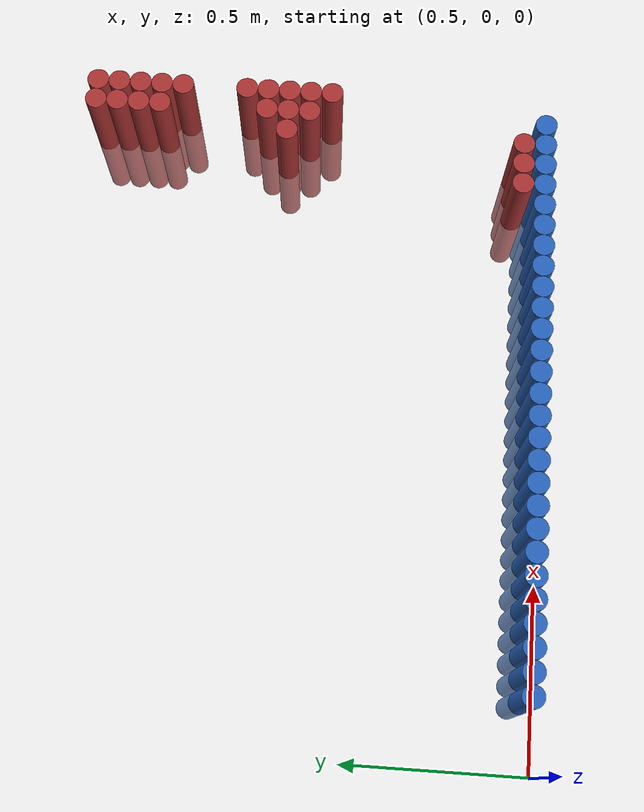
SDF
<sdf version="1.6">
 <world name="default">
  <model name="ground_plane">
   <static>1</static>
   <link name="link">
    <collision name="collision">
     <geometry><plane><normal>0 0 1</normal><size>100 100</size></plane></geometry>
     <surface><friction><ode><mu>100</mu><mu2>50</mu2></ode></friction></surface>
    </collision>
    <visual name="visual">
     <cast_shadows>0</cast_shadows>
     <geometry><plane><normal>0 0 1</normal><size>100 100</size></plane></geometry>
     <material>
      <script><uri>file://media/materials/scripts/gazebo.material</uri><name>Gazebo/Grey</name></script>
     </material>
    </visual>
   </link>
  </model>
  <model name="unit_cylinder_49">
   <static>1</static>
   <pose>0.690000 0.030000 0.000000 0.000000 0.000000 0.000000</pose>
   <link name="link">
    <inertial>
     <mass>1</mass>
     <inertia><ixx>0.145833</ixx><ixy>0</ixy><ixz>0</ixz><iyy>0.145833</iyy><iyz>0</iyz><izz>0.125</izz></inertia>
    </inertial>
    <collision name="collision">
     <geometry><cylinder><radius>0.030000</radius><length>0.5</length></cylinder></geometry>
    </collision>
    <visual name="visual">
     <geometry><cylinder><radius>0.030000</radius><length>0.5</length></cylinder></geometry>
     <material>
      <ambient>0.152000 0.379000 0.720000 1</ambient>
      <diffuse>0.152000 0.379000 0.720000 1</diffuse>
     </material>
     <material>
      <script><name>Gazebo/Grey</name><uri>file://media/materials/scripts/gazebo.material</uri></script>
     </material>
    </visual>
   </link>
  </model>
  <model name="unit_cylinder_51">
   <static>1</static>
   <pose>0.750000 0.030000 0.000000 0.000000 0.000000 0.000000</pose>
   <link name="link">
    <inertial>
     <mass>1</mass>
     <inertia><ixx>0.145833</ixx><ixy>0</ixy><ixz>0</ixz><iyy>0.145833</iyy><iyz>0</iyz><izz>0.125</izz></inertia>
    </inertial>
    <collision name="collision">
     <geometry><cylinder><radius>0.030000</radius><length>0.5</length></cylinder></geometry>
    </collision>
    <visual name="visual">
     <geometry><cylinder><radius>0.030000</radius><length>0.5</length></cylinder></geometry>
     <material>
      <ambient>0.152000 0.379000 0.720000 1</ambient>
      <diffuse>0.152000 0.379000 0.720000 1</diffuse>
     </material>
     <material>
      <script><name>Gazebo/Grey</name><uri>file://media/materials/scripts/gazebo.material</uri></script>
     </material>
    </visual>
   </link>
  </model>
  <model name="unit_cylinder_53">
   <static>1</static>
   <pose>0.810000 0.030000 0.000000 0.000000 0.000000 0.000000</pose>
   <link name="link">
    <inertial>
     <mass>1</mass>
     <inertia><ixx>0.145833</ixx><ixy>0</ixy><ixz>0</ixz><iyy>0.145833</iyy><iyz>0</iyz><izz>0.125</izz></inertia>
    </inertial>
    <collision name="collision">
     <geometry><cylinder><radius>0.030000</radius><length>0.5</length></cylinder></geometry>
    </collision>
    <visual name="visual">
     <geometry><cylinder><radius>0.030000</radius><length>0.5</length></cylinder></geometry>
     <material>
      <ambient>0.152000 0.379000 0.720000 1</ambient>
      <diffuse>0.152000 0.379000 0.720000 1</diffuse>
     </material>
     <material>
      <script><name>Gazebo/Grey</name><uri>file://media/materials/scripts/gazebo.material</uri></script>
     </material>
    </visual>
   </link>
  </model>
  <model name="unit_cylinder_55">
   <static>1</static>
   <pose>0.870000 0.030000 0.000000 0.000000 0.000000 0.000000</pose>
   <link name="link">
    <inertial>
     <mass>1</mass>
     <inertia><ixx>0.145833</ixx><ixy>0</ixy><ixz>0</ixz><iyy>0.145833</iyy><iyz>0</iyz><izz>0.125</izz></inertia>
    </inertial>
    <collision name="collision">
     <geometry><cylinder><radius>0.030000</radius><length>0.5</length></cylinder></geometry>
    </collision>
    <visual name="visual">
     <geometry><cylinder><radius>0.030000</radius><length>0.5</length></cylinder></geometry>
     <material>
      <ambient>0.152000 0.379000 0.720000 1</ambient>
      <diffuse>0.152000 0.379000 0.720000 1</diffuse>
     </material>
     <material>
      <script><name>Gazebo/Grey</name><uri>file://media/materials/scripts/gazebo.material</uri></script>
     </material>
    </visual>
   </link>
  </model>
  <model name="unit_cylinder_57">
   <static>1</static>
   <pose>0.930000 0.030000 0.000000 0.000000 0.000000 0.000000</pose>
   <link name="link">
    <inertial>
     <mass>1</mass>
     <inertia><ixx>0.145833</ixx><ixy>0</ixy><ixz>0</ixz><iyy>0.145833</iyy><iyz>0</iyz><izz>0.125</izz></inertia>
    </inertial>
    <collision name="collision">
     <geometry><cylinder><radius>0.030000</radius><length>0.5</length></cylinder></geometry>
    </collision>
    <visual name="visual">
     <geometry><cylinder><radius>0.030000</radius><length>0.5</length></cylinder></geometry>
     <material>
      <ambient>0.152000 0.379000 0.720000 1</ambient>
      <diffuse>0.152000 0.379000 0.720000 1</diffuse>
     </material>
     <material>
      <script><name>Gazebo/Grey</name><uri>file://media/materials/scripts/gazebo.material</uri></script>
     </material>
    </visual>
   </link>
  </model>
  <model name="unit_cylinder_59">
   <static>1</static>
   <pose>0.990000 0.030000 0.000000 0.000000 0.000000 0.000000</pose>
   <link name="link">
    <inertial>
     <mass>1</mass>
     <inertia><ixx>0.145833</ixx><ixy>0</ixy><ixz>0</ixz><iyy>0.145833</iyy><iyz>0</iyz><izz>0.125</izz></inertia>
    </inertial>
    <collision name="collision">
     <geometry><cylinder><radius>0.030000</radius><length>0.5</length></cylinder></geometry>
    </collision>
    <visual name="visual">
     <geometry><cylinder><radius>0.030000</radius><length>0.5</length></cylinder></geometry>
     <material>
      <ambient>0.152000 0.379000 0.720000 1</ambient>
      <diffuse>0.152000 0.379000 0.720000 1</diffuse>
     </material>
     <material>
      <script><name>Gazebo/Grey</name><uri>file://media/materials/scripts/gazebo.material</uri></script>
     </material>
    </visual>
   </link>
  </model>
  <model name="unit_cylinder_61">
   <static>1</static>
   <pose>1.050000 0.030000 0.000000 0.000000 0.000000 0.000000</pose>
   <link name="link">
    <inertial>
     <mass>1</mass>
     <inertia><ixx>0.145833</ixx><ixy>0</ixy><ixz>0</ixz><iyy>0.145833</iyy><iyz>0</iyz><izz>0.125</izz></inertia>
    </inertial>
    <collision name="collision">
     <geometry><cylinder><radius>0.030000</radius><length>0.5</length></cylinder></geometry>
    </collision>
    <visual name="visual">
     <geometry><cylinder><radius>0.030000</radius><length>0.5</length></cylinder></geometry>
     <material>
      <ambient>0.152000 0.379000 0.720000 1</ambient>
      <diffuse>0.152000 0.379000 0.720000 1</diffuse>
     </material>
     <material>
      <script><name>Gazebo/Grey</name><uri>file://media/materials/scripts/gazebo.material</uri></script>
     </material>
    </visual>
   </link>
  </model>
  <model name="unit_cylinder_63">
   <static>1</static>
   <pose>1.110000 0.030000 0.000000 0.000000 0.000000 0.000000</pose>
   <link name="link">
    <inertial>
     <mass>1</mass>
     <inertia><ixx>0.145833</ixx><ixy>0</ixy><ixz>0</ixz><iyy>0.145833</iyy><iyz>0</iyz><izz>0.125</izz></inertia>
    </inertial>
    <collision name="collision">
     <geometry><cylinder><radius>0.030000</radius><length>0.5</length></cylinder></geometry>
    </collision>
    <visual name="visual">
     <geometry><cylinder><radius>0.030000</radius><length>0.5</length></cylinder></geometry>
     <material>
      <ambient>0.152000 0.379000 0.720000 1</ambient>
      <diffuse>0.152000 0.379000 0.720000 1</diffuse>
     </material>
     <material>
      <script><name>Gazebo/Grey</name><uri>file://media/materials/scripts/gazebo.material</uri></script>
     </material>
    </visual>
   </link>
  </model>
  <model name="unit_cylinder_65">
   <static>1</static>
   <pose>1.170000 0.030000 0.000000 0.000000 0.000000 0.000000</pose>
   <link name="link">
    <inertial>
     <mass>1</mass>
     <inertia><ixx>0.145833</ixx><ixy>0</ixy><ixz>0</ixz><iyy>0.145833</iyy><iyz>0</iyz><izz>0.125</izz></inertia>
    </inertial>
    <collision name="collision">
     <geometry><cylinder><radius>0.030000</radius><length>0.5</length></cylinder></geometry>
    </collision>
    <visual name="visual">
     <geometry><cylinder><radius>0.030000</radius><length>0.5</length></cylinder></geometry>
     <material>
      <ambient>0.152000 0.379000 0.720000 1</ambient>
      <diffuse>0.152000 0.379000 0.720000 1</diffuse>
     </material>
     <material>
      <script><name>Gazebo/Grey</name><uri>file://media/materials/scripts/gazebo.material</uri></script>
     </material>
    </visual>
   </link>
  </model>
  <model name="unit_cylinder_67">
   <static>1</static>
   <pose>1.230000 0.030000 0.000000 0.000000 0.000000 0.000000</pose>
   <link name="link">
    <inertial>
     <mass>1</mass>
     <inertia><ixx>0.145833</ixx><ixy>0</ixy><ixz>0</ixz><iyy>0.145833</iyy><iyz>0</iyz><izz>0.125</izz></inertia>
    </inertial>
    <collision name="collision">
     <geometry><cylinder><radius>0.030000</radius><length>0.5</length></cylinder></geometry>
    </collision>
    <visual name="visual">
     <geometry><cylinder><radius>0.030000</radius><length>0.5</length></cylinder></geometry>
     <material>
      <ambient>0.152000 0.379000 0.720000 1</ambient>
      <diffuse>0.152000 0.379000 0.720000 1</diffuse>
     </material>
     <material>
      <script><name>Gazebo/Grey</name><uri>file://media/materials/scripts/gazebo.material</uri></script>
     </material>
    </visual>
   </link>
  </model>
  <model name="unit_cylinder_69">
   <static>1</static>
   <pose>1.290000 0.030000 0.000000 0.000000 0.000000 0.000000</pose>
   <link name="link">
    <inertial>
     <mass>1</mass>
     <inertia><ixx>0.145833</ixx><ixy>0</ixy><ixz>0</ixz><iyy>0.145833</iyy><iyz>0</iyz><izz>0.125</izz></inertia>
    </inertial>
    <collision name="collision">
     <geometry><cylinder><radius>0.030000</radius><length>0.5</length></cylinder></geometry>
    </collision>
    <visual name="visual">
     <geometry><cylinder><radius>0.030000</radius><length>0.5</length></cylinder></geometry>
     <material>
      <ambient>0.152000 0.379000 0.720000 1</ambient>
      <diffuse>0.152000 0.379000 0.720000 1</diffuse>
     </material>
     <material>
      <script><name>Gazebo/Grey</name><uri>file://media/materials/scripts/gazebo.material</uri></script>
     </material>
    </visual>
   </link>
  </model>
  <model name="unit_cylinder_71">
   <static>1</static>
   <pose>1.350000 0.030000 0.000000 0.000000 0.000000 0.000000</pose>
   <link name="link">
    <inertial>
     <mass>1</mass>
     <inertia><ixx>0.145833</ixx><ixy>0</ixy><ixz>0</ixz><iyy>0.145833</iyy><iyz>0</iyz><izz>0.125</izz></inertia>
    </inertial>
    <collision name="collision">
     <geometry><cylinder><radius>0.030000</radius><length>0.5</length></cylinder></geometry>
    </collision>
    <visual name="visual">
     <geometry><cylinder><radius>0.030000</radius><length>0.5</length></cylinder></geometry>
     <material>
      <ambient>0.152000 0.379000 0.720000 1</ambient>
      <diffuse>0.152000 0.379000 0.720000 1</diffuse>
     </material>
     <material>
      <script><name>Gazebo/Grey</name><uri>file://media/materials/scripts/gazebo.material</uri></script>
     </material>
    </visual>
   </link>
  </model>
  <model name="unit_cylinder_73">
   <static>1</static>
   <pose>1.410000 0.030000 0.000000 0.000000 0.000000 0.000000</pose>
   <link name="link">
    <inertial>
     <mass>1</mass>
     <inertia><ixx>0.145833</ixx><ixy>0</ixy><ixz>0</ixz><iyy>0.145833</iyy><iyz>0</iyz><izz>0.125</izz></inertia>
    </inertial>
    <collision name="collision">
     <geometry><cylinder><radius>0.030000</radius><length>0.5</length></cylinder></geometry>
    </collision>
    <visual name="visual">
     <geometry><cylinder><radius>0.030000</radius><length>0.5</length></cylinder></geometry>
     <material>
      <ambient>0.152000 0.379000 0.720000 1</ambient>
      <diffuse>0.152000 0.379000 0.720000 1</diffuse>
     </material>
     <material>
      <script><name>Gazebo/Grey</name><uri>file://media/materials/scripts/gazebo.material</uri></script>
     </material>
    </visual>
   </link>
  </model>
  <model name="unit_cylinder_75">
   <static>1</static>
   <pose>1.470000 0.030000 0.000000 0.000000 0.000000 0.000000</pose>
   <link name="link">
    <inertial>
     <mass>1</mass>
     <inertia><ixx>0.145833</ixx><ixy>0</ixy><ixz>0</ixz><iyy>0.145833</iyy><iyz>0</iyz><izz>0.125</izz></inertia>
    </inertial>
    <collision name="collision">
     <geometry><cylinder><radius>0.030000</radius><length>0.5</length></cylinder></geometry>
    </collision>
    <visual name="visual">
     <geometry><cylinder><radius>0.030000</radius><length>0.5</length></cylinder></geometry>
     <material>
      <ambient>0.152000 0.379000 0.720000 1</ambient>
      <diffuse>0.152000 0.379000 0.720000 1</diffuse>
     </material>
     <material>
      <script><name>Gazebo/Grey</name><uri>file://media/materials/scripts/gazebo.material</uri></script>
     </material>
    </visual>
   </link>
  </model>
  <model name="unit_cylinder_77">
   <static>1</static>
   <pose>1.530000 0.030000 0.000000 0.000000 0.000000 0.000000</pose>
   <link name="link">
    <inertial>
     <mass>1</mass>
     <inertia><ixx>0.145833</ixx><ixy>0</ixy><ixz>0</ixz><iyy>0.145833</iyy><iyz>0</iyz><izz>0.125</izz></inertia>
    </inertial>
    <collision name="collision">
     <geometry><cylinder><radius>0.030000</radius><length>0.5</length></cylinder></geometry>
    </collision>
    <visual name="visual">
     <geometry><cylinder><radius>0.030000</radius><length>0.5</length></cylinder></geometry>
     <material>
      <ambient>0.152000 0.379000 0.720000 1</ambient>
      <diffuse>0.152000 0.379000 0.720000 1</diffuse>
     </material>
     <material>
      <script><name>Gazebo/Grey</name><uri>file://media/materials/scripts/gazebo.material</uri></script>
     </material>
    </visual>
   </link>
  </model>
  <model name="unit_cylinder_79">
   <static>1</static>
   <pose>1.590000 0.030000 0.000000 0.000000 0.000000 0.000000</pose>
   <link name="link">
    <inertial>
     <mass>1</mass>
     <inertia><ixx>0.145833</ixx><ixy>0</ixy><ixz>0</ixz><iyy>0.145833</iyy><iyz>0</iyz><izz>0.125</izz></inertia>
    </inertial>
    <collision name="collision">
     <geometry><cylinder><radius>0.030000</radius><length>0.5</length></cylinder></geometry>
    </collision>
    <visual name="visual">
     <geometry><cylinder><radius>0.030000</radius><length>0.5</length></cylinder></geometry>
     <material>
      <ambient>0.152000 0.379000 0.720000 1</ambient>
      <diffuse>0.152000 0.379000 0.720000 1</diffuse>
     </material>
     <material>
      <script><name>Gazebo/Grey</name><uri>file://media/materials/scripts/gazebo.material</uri></script>
     </material>
    </visual>
   </link>
  </model>
  <model name="unit_cylinder_81">
   <static>1</static>
   <pose>1.650000 0.030000 0.000000 0.000000 0.000000 0.000000</pose>
   <link name="link">
    <inertial>
     <mass>1</mass>
     <inertia><ixx>0.145833</ixx><ixy>0</ixy><ixz>0</ixz><iyy>0.145833</iyy><iyz>0</iyz><izz>0.125</izz></inertia>
    </inertial>
    <collision name="collision">
     <geometry><cylinder><radius>0.030000</radius><length>0.5</length></cylinder></geometry>
    </collision>
    <visual name="visual">
     <geometry><cylinder><radius>0.030000</radius><length>0.5</length></cylinder></geometry>
     <material>
      <ambient>0.152000 0.379000 0.720000 1</ambient>
      <diffuse>0.152000 0.379000 0.720000 1</diffuse>
     </material>
     <material>
      <script><name>Gazebo/Grey</name><uri>file://media/materials/scripts/gazebo.material</uri></script>
     </material>
    </visual>
   </link>
  </model>
  <model name="unit_cylinder_83">
   <static>1</static>
   <pose>1.710000 0.030000 0.000000 0.000000 0.000000 0.000000</pose>
   <link name="link">
    <inertial>
     <mass>1</mass>
     <inertia><ixx>0.145833</ixx><ixy>0</ixy><ixz>0</ixz><iyy>0.145833</iyy><iyz>0</iyz><izz>0.125</izz></inertia>
    </inertial>
    <collision name="collision">
     <geometry><cylinder><radius>0.030000</radius><length>0.5</length></cylinder></geometry>
    </collision>
    <visual name="visual">
     <geometry><cylinder><radius>0.030000</radius><length>0.5</length></cylinder></geometry>
     <material>
      <ambient>0.152000 0.379000 0.720000 1</ambient>
      <diffuse>0.152000 0.379000 0.720000 1</diffuse>
     </material>
     <material>
      <script><name>Gazebo/Grey</name><uri>file://media/materials/scripts/gazebo.material</uri></script>
     </material>
    </visual>
   </link>
  </model>
  <model name="unit_cylinder_85">
   <static>1</static>
   <pose>1.770000 0.030000 0.000000 0.000000 0.000000 0.000000</pose>
   <link name="link">
    <inertial>
     <mass>1</mass>
     <inertia><ixx>0.145833</ixx><ixy>0</ixy><ixz>0</ixz><iyy>0.145833</iyy><iyz>0</iyz><izz>0.125</izz></inertia>
    </inertial>
    <collision name="collision">
     <geometry><cylinder><radius>0.030000</radius><length>0.5</length></cylinder></geometry>
    </collision>
    <visual name="visual">
     <geometry><cylinder><radius>0.030000</radius><length>0.5</length></cylinder></geometry>
     <material>
      <ambient>0.152000 0.379000 0.720000 1</ambient>
      <diffuse>0.152000 0.379000 0.720000 1</diffuse>
     </material>
     <material>
      <script><name>Gazebo/Grey</name><uri>file://media/materials/scripts/gazebo.material</uri></script>
     </material>
    </visual>
   </link>
  </model>
  <model name="unit_cylinder_87">
   <static>1</static>
   <pose>1.830000 0.030000 0.000000 0.000000 0.000000 0.000000</pose>
   <link name="link">
    <inertial>
     <mass>1</mass>
     <inertia><ixx>0.145833</ixx><ixy>0</ixy><ixz>0</ixz><iyy>0.145833</iyy><iyz>0</iyz><izz>0.125</izz></inertia>
    </inertial>
    <collision name="collision">
     <geometry><cylinder><radius>0.030000</radius><length>0.5</length></cylinder></geometry>
    </collision>
    <visual name="visual">
     <geometry><cylinder><radius>0.030000</radius><length>0.5</length></cylinder></geometry>
     <material>
      <ambient>0.152000 0.379000 0.720000 1</ambient>
      <diffuse>0.152000 0.379000 0.720000 1</diffuse>
     </material>
     <material>
      <script><name>Gazebo/Grey</name><uri>file://media/materials/scripts/gazebo.material</uri></script>
     </material>
    </visual>
   </link>
  </model>
  <model name="unit_cylinder_89">
   <static>1</static>
   <pose>1.890000 0.030000 0.000000 0.000000 0.000000 0.000000</pose>
   <link name="link">
    <inertial>
     <mass>1</mass>
     <inertia><ixx>0.145833</ixx><ixy>0</ixy><ixz>0</ixz><iyy>0.145833</iyy><iyz>0</iyz><izz>0.125</izz></inertia>
    </inertial>
    <collision name="collision">
     <geometry><cylinder><radius>0.030000</radius><length>0.5</length></cylinder></geometry>
    </collision>
    <visual name="visual">
     <geometry><cylinder><radius>0.030000</radius><length>0.5</length></cylinder></geometry>
     <material>
      <ambient>0.152000 0.379000 0.720000 1</ambient>
      <diffuse>0.152000 0.379000 0.720000 1</diffuse>
     </material>
     <material>
      <script><name>Gazebo/Grey</name><uri>file://media/materials/scripts/gazebo.material</uri></script>
     </material>
    </visual>
   </link>
  </model>
  <model name="unit_cylinder_91">
   <static>1</static>
   <pose>1.950000 0.030000 0.000000 0.000000 0.000000 0.000000</pose>
   <link name="link">
    <inertial>
     <mass>1</mass>
     <inertia><ixx>0.145833</ixx><ixy>0</ixy><ixz>0</ixz><iyy>0.145833</iyy><iyz>0</iyz><izz>0.125</izz></inertia>
    </inertial>
    <collision name="collision">
     <geometry><cylinder><radius>0.030000</radius><length>0.5</length></cylinder></geometry>
    </collision>
    <visual name="visual">
     <geometry><cylinder><radius>0.030000</radius><length>0.5</length></cylinder></geometry>
     <material>
      <ambient>0.152000 0.379000 0.720000 1</ambient>
      <diffuse>0.152000 0.379000 0.720000 1</diffuse>
     </material>
     <material>
      <script><name>Gazebo/Grey</name><uri>file://media/materials/scripts/gazebo.material</uri></script>
     </material>
    </visual>
   </link>
  </model>
  <model name="unit_cylinder_93">
   <static>1</static>
   <pose>2.010000 0.030000 0.000000 0.000000 0.000000 0.000000</pose>
   <link name="link">
    <inertial>
     <mass>1</mass>
     <inertia><ixx>0.145833</ixx><ixy>0</ixy><ixz>0</ixz><iyy>0.145833</iyy><iyz>0</iyz><izz>0.125</izz></inertia>
    </inertial>
    <collision name="collision">
     <geometry><cylinder><radius>0.030000</radius><length>0.5</length></cylinder></geometry>
    </collision>
    <visual name="visual">
     <geometry><cylinder><radius>0.030000</radius><length>0.5</length></cylinder></geometry>
     <material>
      <ambient>0.152000 0.379000 0.720000 1</ambient>
      <diffuse>0.152000 0.379000 0.720000 1</diffuse>
     </material>
     <material>
      <script><name>Gazebo/Grey</name><uri>file://media/materials/scripts/gazebo.material</uri></script>
     </material>
    </visual>
   </link>
  </model>
  <model name="unit_cylinder_176">
   <static>1</static>
   <pose>2.250000 1.290000 0.000000 0.000000 0.000000 0.000000</pose>
   <link name="link">
    <inertial>
     <mass>1</mass>
     <inertia><ixx>0.145833</ixx><ixy>0</ixy><ixz>0</ixz><iyy>0.145833</iyy><iyz>0</iyz><izz>0.125</izz></inertia>
    </inertial>
    <collision name="collision">
     <geometry><cylinder><radius>0.030000</radius><length>0.5</length></cylinder></geometry>
    </collision>
    <visual name="visual">
     <geometry><cylinder><radius>0.030000</radius><length>0.5</length></cylinder></geometry>
     <material>
      <ambient>0.648000 0.192000 0.192000 1</ambient>
      <diffuse>0.648000 0.192000 0.192000 1</diffuse>
     </material>
     <material>
      <script><name>Gazebo/Grey</name><uri>file://media/materials/scripts/gazebo.material</uri></script>
     </material>
    </visual>
   </link>
  </model>
  <model name="unit_cylinder_177">
   <static>1</static>
   <pose>2.310000 1.290000 0.000000 0.000000 0.000000 0.000000</pose>
   <link name="link">
    <inertial>
     <mass>1</mass>
     <inertia><ixx>0.145833</ixx><ixy>0</ixy><ixz>0</ixz><iyy>0.145833</iyy><iyz>0</iyz><izz>0.125</izz></inertia>
    </inertial>
    <collision name="collision">
     <geometry><cylinder><radius>0.030000</radius><length>0.5</length></cylinder></geometry>
    </collision>
    <visual name="visual">
     <geometry><cylinder><radius>0.030000</radius><length>0.5</length></cylinder></geometry>
     <material>
      <ambient>0.648000 0.192000 0.192000 1</ambient>
      <diffuse>0.648000 0.192000 0.192000 1</diffuse>
     </material>
     <material>
      <script><name>Gazebo/Grey</name><uri>file://media/materials/scripts/gazebo.material</uri></script>
     </material>
    </visual>
   </link>
  </model>
  <model name="unit_cylinder_181">
   <static>1</static>
   <pose>2.250000 1.230000 0.000000 0.000000 0.000000 0.000000</pose>
   <link name="link">
    <inertial>
     <mass>1</mass>
     <inertia><ixx>0.145833</ixx><ixy>0</ixy><ixz>0</ixz><iyy>0.145833</iyy><iyz>0</iyz><izz>0.125</izz></inertia>
    </inertial>
    <collision name="collision">
     <geometry><cylinder><radius>0.030000</radius><length>0.5</length></cylinder></geometry>
    </collision>
    <visual name="visual">
     <geometry><cylinder><radius>0.030000</radius><length>0.5</length></cylinder></geometry>
     <material>
      <ambient>0.648000 0.192000 0.192000 1</ambient>
      <diffuse>0.648000 0.192000 0.192000 1</diffuse>
     </material>
     <material>
      <script><name>Gazebo/Grey</name><uri>file://media/materials/scripts/gazebo.material</uri></script>
     </material>
    </visual>
   </link>
  </model>
  <model name="unit_cylinder_182">
   <static>1</static>
   <pose>2.310000 1.230000 0.000000 0.000000 0.000000 0.000000</pose>
   <link name="link">
    <inertial>
     <mass>1</mass>
     <inertia><ixx>0.145833</ixx><ixy>0</ixy><ixz>0</ixz><iyy>0.145833</iyy><iyz>0</iyz><izz>0.125</izz></inertia>
    </inertial>
    <collision name="collision">
     <geometry><cylinder><radius>0.030000</radius><length>0.5</length></cylinder></geometry>
    </collision>
    <visual name="visual">
     <geometry><cylinder><radius>0.030000</radius><length>0.5</length></cylinder></geometry>
     <material>
      <ambient>0.648000 0.192000 0.192000 1</ambient>
      <diffuse>0.648000 0.192000 0.192000 1</diffuse>
     </material>
     <material>
      <script><name>Gazebo/Grey</name><uri>file://media/materials/scripts/gazebo.material</uri></script>
     </material>
    </visual>
   </link>
  </model>
  <model name="unit_cylinder_185">
   <static>1</static>
   <pose>2.250000 1.170000 0.000000 0.000000 0.000000 0.000000</pose>
   <link name="link">
    <inertial>
     <mass>1</mass>
     <inertia><ixx>0.145833</ixx><ixy>0</ixy><ixz>0</ixz><iyy>0.145833</iyy><iyz>0</iyz><izz>0.125</izz></inertia>
    </inertial>
    <collision name="collision">
     <geometry><cylinder><radius>0.030000</radius><length>0.5</length></cylinder></geometry>
    </collision>
    <visual name="visual">
     <geometry><cylinder><radius>0.030000</radius><length>0.5</length></cylinder></geometry>
     <material>
      <ambient>0.648000 0.192000 0.192000 1</ambient>
      <diffuse>0.648000 0.192000 0.192000 1</diffuse>
     </material>
     <material>
      <script><name>Gazebo/Grey</name><uri>file://media/materials/scripts/gazebo.material</uri></script>
     </material>
    </visual>
   </link>
  </model>
  <model name="unit_cylinder_186">
   <static>1</static>
   <pose>2.310000 1.170000 0.000000 0.000000 0.000000 0.000000</pose>
   <link name="link">
    <inertial>
     <mass>1</mass>
     <inertia><ixx>0.145833</ixx><ixy>0</ixy><ixz>0</ixz><iyy>0.145833</iyy><iyz>0</iyz><izz>0.125</izz></inertia>
    </inertial>
    <collision name="collision">
     <geometry><cylinder><radius>0.030000</radius><length>0.5</length></cylinder></geometry>
    </collision>
    <visual name="visual">
     <geometry><cylinder><radius>0.030000</radius><length>0.5</length></cylinder></geometry>
     <material>
      <ambient>0.648000 0.192000 0.192000 1</ambient>
      <diffuse>0.648000 0.192000 0.192000 1</diffuse>
     </material>
     <material>
      <script><name>Gazebo/Grey</name><uri>file://media/materials/scripts/gazebo.material</uri></script>
     </material>
    </visual>
   </link>
  </model>
  <model name="unit_cylinder_187">
   <static>1</static>
   <pose>2.250000 1.110000 0.000000 0.000000 0.000000 0.000000</pose>
   <link name="link">
    <inertial>
     <mass>1</mass>
     <inertia><ixx>0.145833</ixx><ixy>0</ixy><ixz>0</ixz><iyy>0.145833</iyy><iyz>0</iyz><izz>0.125</izz></inertia>
    </inertial>
    <collision name="collision">
     <geometry><cylinder><radius>0.030000</radius><length>0.5</length></cylinder></geometry>
    </collision>
    <visual name="visual">
     <geometry><cylinder><radius>0.030000</radius><length>0.5</length></cylinder></geometry>
     <material>
      <ambient>0.648000 0.192000 0.192000 1</ambient>
      <diffuse>0.648000 0.192000 0.192000 1</diffuse>
     </material>
     <material>
      <script><name>Gazebo/Grey</name><uri>file://media/materials/scripts/gazebo.material</uri></script>
     </material>
    </visual>
   </link>
  </model>
  <model name="unit_cylinder_188">
   <static>1</static>
   <pose>2.310000 1.110000 0.000000 0.000000 0.000000 0.000000</pose>
   <link name="link">
    <inertial>
     <mass>1</mass>
     <inertia><ixx>0.145833</ixx><ixy>0</ixy><ixz>0</ixz><iyy>0.145833</iyy><iyz>0</iyz><izz>0.125</izz></inertia>
    </inertial>
    <collision name="collision">
     <geometry><cylinder><radius>0.030000</radius><length>0.5</length></cylinder></geometry>
    </collision>
    <visual name="visual">
     <geometry><cylinder><radius>0.030000</radius><length>0.5</length></cylinder></geometry>
     <material>
      <ambient>0.648000 0.192000 0.192000 1</ambient>
      <diffuse>0.648000 0.192000 0.192000 1</diffuse>
     </material>
     <material>
      <script><name>Gazebo/Grey</name><uri>file://media/materials/scripts/gazebo.material</uri></script>
     </material>
    </visual>
   </link>
  </model>
  <model name="unit_cylinder_189">
   <static>1</static>
   <pose>2.310000 1.050000 0.000000 0.000000 0.000000 0.000000</pose>
   <link name="link">
    <inertial>
     <mass>1</mass>
     <inertia><ixx>0.145833</ixx><ixy>0</ixy><ixz>0</ixz><iyy>0.145833</iyy><iyz>0</iyz><izz>0.125</izz></inertia>
    </inertial>
    <collision name="collision">
     <geometry><cylinder><radius>0.030000</radius><length>0.5</length></cylinder></geometry>
    </collision>
    <visual name="visual">
     <geometry><cylinder><radius>0.030000</radius><length>0.5</length></cylinder></geometry>
     <material>
      <ambient>0.648000 0.192000 0.192000 1</ambient>
      <diffuse>0.648000 0.192000 0.192000 1</diffuse>
     </material>
     <material>
      <script><name>Gazebo/Grey</name><uri>file://media/materials/scripts/gazebo.material</uri></script>
     </material>
    </visual>
   </link>
  </model>
  <model name="unit_cylinder_190">
   <static>1</static>
   <pose>2.310000 0.870000 0.000000 0.000000 0.000000 0.000000</pose>
   <link name="link">
    <inertial>
     <mass>1</mass>
     <inertia><ixx>0.145833</ixx><ixy>0</ixy><ixz>0</ixz><iyy>0.145833</iyy><iyz>0</iyz><izz>0.125</izz></inertia>
    </inertial>
    <collision name="collision">
     <geometry><cylinder><radius>0.030000</radius><length>0.5</length></cylinder></geometry>
    </collision>
    <visual name="visual">
     <geometry><cylinder><radius>0.030000</radius><length>0.5</length></cylinder></geometry>
     <material>
      <ambient>0.648000 0.192000 0.192000 1</ambient>
      <diffuse>0.648000 0.192000 0.192000 1</diffuse>
     </material>
     <material>
      <script><name>Gazebo/Grey</name><uri>file://media/materials/scripts/gazebo.material</uri></script>
     </material>
    </visual>
   </link>
  </model>
  <model name="unit_cylinder_191">
   <static>1</static>
   <pose>2.250000 0.810000 0.000000 0.000000 0.000000 0.000000</pose>
   <link name="link">
    <inertial>
     <mass>1</mass>
     <inertia><ixx>0.145833</ixx><ixy>0</ixy><ixz>0</ixz><iyy>0.145833</iyy><iyz>0</iyz><izz>0.125</izz></inertia>
    </inertial>
    <collision name="collision">
     <geometry><cylinder><radius>0.030000</radius><length>0.5</length></cylinder></geometry>
    </collision>
    <visual name="visual">
     <geometry><cylinder><radius>0.030000</radius><length>0.5</length></cylinder></geometry>
     <material>
      <ambient>0.648000 0.192000 0.192000 1</ambient>
      <diffuse>0.648000 0.192000 0.192000 1</diffuse>
     </material>
     <material>
      <script><name>Gazebo/Grey</name><uri>file://media/materials/scripts/gazebo.material</uri></script>
     </material>
    </visual>
   </link>
  </model>
  <model name="unit_cylinder_192">
   <static>1</static>
   <pose>2.310000 0.810000 0.000000 0.000000 0.000000 0.000000</pose>
   <link name="link">
    <inertial>
     <mass>1</mass>
     <inertia><ixx>0.145833</ixx><ixy>0</ixy><ixz>0</ixz><iyy>0.145833</iyy><iyz>0</iyz><izz>0.125</izz></inertia>
    </inertial>
    <collision name="collision">
     <geometry><cylinder><radius>0.030000</radius><length>0.5</length></cylinder></geometry>
    </collision>
    <visual name="visual">
     <geometry><cylinder><radius>0.030000</radius><length>0.5</length></cylinder></geometry>
     <material>
      <ambient>0.648000 0.192000 0.192000 1</ambient>
      <diffuse>0.648000 0.192000 0.192000 1</diffuse>
     </material>
     <material>
      <script><name>Gazebo/Grey</name><uri>file://media/materials/scripts/gazebo.material</uri></script>
     </material>
    </visual>
   </link>
  </model>
  <model name="unit_cylinder_193">
   <static>1</static>
   <pose>2.190000 0.750000 0.000000 0.000000 0.000000 0.000000</pose>
   <link name="link">
    <inertial>
     <mass>1</mass>
     <inertia><ixx>0.145833</ixx><ixy>0</ixy><ixz>0</ixz><iyy>0.145833</iyy><iyz>0</iyz><izz>0.125</izz></inertia>
    </inertial>
    <collision name="collision">
     <geometry><cylinder><radius>0.030000</radius><length>0.5</length></cylinder></geometry>
    </collision>
    <visual name="visual">
     <geometry><cylinder><radius>0.030000</radius><length>0.5</length></cylinder></geometry>
     <material>
      <ambient>0.648000 0.192000 0.192000 1</ambient>
      <diffuse>0.648000 0.192000 0.192000 1</diffuse>
     </material>
     <material>
      <script><name>Gazebo/Grey</name><uri>file://media/materials/scripts/gazebo.material</uri></script>
     </material>
    </visual>
   </link>
  </model>
  <model name="unit_cylinder_194">
   <static>1</static>
   <pose>2.250000 0.750000 0.000000 0.000000 0.000000 0.000000</pose>
   <link name="link">
    <inertial>
     <mass>1</mass>
     <inertia><ixx>0.145833</ixx><ixy>0</ixy><ixz>0</ixz><iyy>0.145833</iyy><iyz>0</iyz><izz>0.125</izz></inertia>
    </inertial>
    <collision name="collision">
     <geometry><cylinder><radius>0.030000</radius><length>0.5</length></cylinder></geometry>
    </collision>
    <visual name="visual">
     <geometry><cylinder><radius>0.030000</radius><length>0.5</length></cylinder></geometry>
     <material>
      <ambient>0.648000 0.192000 0.192000 1</ambient>
      <diffuse>0.648000 0.192000 0.192000 1</diffuse>
     </material>
     <material>
      <script><name>Gazebo/Grey</name><uri>file://media/materials/scripts/gazebo.material</uri></script>
     </material>
    </visual>
   </link>
  </model>
  <model name="unit_cylinder_195">
   <static>1</static>
   <pose>2.310000 0.750000 0.000000 0.000000 0.000000 0.000000</pose>
   <link name="link">
    <inertial>
     <mass>1</mass>
     <inertia><ixx>0.145833</ixx><ixy>0</ixy><ixz>0</ixz><iyy>0.145833</iyy><iyz>0</iyz><izz>0.125</izz></inertia>
    </inertial>
    <collision name="collision">
     <geometry><cylinder><radius>0.030000</radius><length>0.5</length></cylinder></geometry>
    </collision>
    <visual name="visual">
     <geometry><cylinder><radius>0.030000</radius><length>0.5</length></cylinder></geometry>
     <material>
      <ambient>0.648000 0.192000 0.192000 1</ambient>
      <diffuse>0.648000 0.192000 0.192000 1</diffuse>
     </material>
     <material>
      <script><name>Gazebo/Grey</name><uri>file://media/materials/scripts/gazebo.material</uri></script>
     </material>
    </visual>
   </link>
  </model>
  <model name="unit_cylinder_198">
   <static>1</static>
   <pose>2.250000 0.690000 0.000000 0.000000 0.000000 0.000000</pose>
   <link name="link">
    <inertial>
     <mass>1</mass>
     <inertia><ixx>0.145833</ixx><ixy>0</ixy><ixz>0</ixz><iyy>0.145833</iyy><iyz>0</iyz><izz>0.125</izz></inertia>
    </inertial>
    <collision name="collision">
     <geometry><cylinder><radius>0.030000</radius><length>0.5</length></cylinder></geometry>
    </collision>
    <visual name="visual">
     <geometry><cylinder><radius>0.030000</radius><length>0.5</length></cylinder></geometry>
     <material>
      <ambient>0.648000 0.192000 0.192000 1</ambient>
      <diffuse>0.648000 0.192000 0.192000 1</diffuse>
     </material>
     <material>
      <script><name>Gazebo/Grey</name><uri>file://media/materials/scripts/gazebo.material</uri></script>
     </material>
    </visual>
   </link>
  </model>
  <model name="unit_cylinder_199">
   <static>1</static>
   <pose>2.310000 0.690000 0.000000 0.000000 0.000000 0.000000</pose>
   <link name="link">
    <inertial>
     <mass>1</mass>
     <inertia><ixx>0.145833</ixx><ixy>0</ixy><ixz>0</ixz><iyy>0.145833</iyy><iyz>0</iyz><izz>0.125</izz></inertia>
    </inertial>
    <collision name="collision">
     <geometry><cylinder><radius>0.030000</radius><length>0.5</length></cylinder></geometry>
    </collision>
    <visual name="visual">
     <geometry><cylinder><radius>0.030000</radius><length>0.5</length></cylinder></geometry>
     <material>
      <ambient>0.648000 0.192000 0.192000 1</ambient>
      <diffuse>0.648000 0.192000 0.192000 1</diffuse>
     </material>
     <material>
      <script><name>Gazebo/Grey</name><uri>file://media/materials/scripts/gazebo.material</uri></script>
     </material>
    </visual>
   </link>
  </model>
  <model name="unit_cylinder_202">
   <static>1</static>
   <pose>2.310000 0.630000 0.000000 0.000000 0.000000 0.000000</pose>
   <link name="link">
    <inertial>
     <mass>1</mass>
     <inertia><ixx>0.145833</ixx><ixy>0</ixy><ixz>0</ixz><iyy>0.145833</iyy><iyz>0</iyz><izz>0.125</izz></inertia>
    </inertial>
    <collision name="collision">
     <geometry><cylinder><radius>0.030000</radius><length>0.5</length></cylinder></geometry>
    </collision>
    <visual name="visual">
     <geometry><cylinder><radius>0.030000</radius><length>0.5</length></cylinder></geometry>
     <material>
      <ambient>0.648000 0.192000 0.192000 1</ambient>
      <diffuse>0.648000 0.192000 0.192000 1</diffuse>
     </material>
     <material>
      <script><name>Gazebo/Grey</name><uri>file://media/materials/scripts/gazebo.material</uri></script>
     </material>
    </visual>
   </link>
  </model>
  <model name="unit_cylinder_239">
   <static>1</static>
   <pose>2.070000 0.090000 0.000000 0.000000 0.000000 0.000000</pose>
   <link name="link">
    <inertial>
     <mass>1</mass>
     <inertia><ixx>0.145833</ixx><ixy>0</ixy><ixz>0</ixz><iyy>0.145833</iyy><iyz>0</iyz><izz>0.125</izz></inertia>
    </inertial>
    <collision name="collision">
     <geometry><cylinder><radius>0.030000</radius><length>0.5</length></cylinder></geometry>
    </collision>
    <visual name="visual">
     <geometry><cylinder><radius>0.030000</radius><length>0.5</length></cylinder></geometry>
     <material>
      <ambient>0.648000 0.192000 0.192000 1</ambient>
      <diffuse>0.648000 0.192000 0.192000 1</diffuse>
     </material>
     <material>
      <script><name>Gazebo/Grey</name><uri>file://media/materials/scripts/gazebo.material</uri></script>
     </material>
    </visual>
   </link>
  </model>
  <model name="unit_cylinder_240">
   <static>1</static>
   <pose>2.130000 0.090000 0.000000 0.000000 0.000000 0.000000</pose>
   <link name="link">
    <inertial>
     <mass>1</mass>
     <inertia><ixx>0.145833</ixx><ixy>0</ixy><ixz>0</ixz><iyy>0.145833</iyy><iyz>0</iyz><izz>0.125</izz></inertia>
    </inertial>
    <collision name="collision">
     <geometry><cylinder><radius>0.030000</radius><length>0.5</length></cylinder></geometry>
    </collision>
    <visual name="visual">
     <geometry><cylinder><radius>0.030000</radius><length>0.5</length></cylinder></geometry>
     <material>
      <ambient>0.648000 0.192000 0.192000 1</ambient>
      <diffuse>0.648000 0.192000 0.192000 1</diffuse>
     </material>
     <material>
      <script><name>Gazebo/Grey</name><uri>file://media/materials/scripts/gazebo.material</uri></script>
     </material>
    </visual>
   </link>
  </model>
  <model name="unit_cylinder_241">
   <static>1</static>
   <pose>2.190000 0.090000 0.000000 0.000000 0.000000 0.000000</pose>
   <link name="link">
    <inertial>
     <mass>1</mass>
     <inertia><ixx>0.145833</ixx><ixy>0</ixy><ixz>0</ixz><iyy>0.145833</iyy><iyz>0</iyz><izz>0.125</izz></inertia>
    </inertial>
    <collision name="collision">
     <geometry><cylinder><radius>0.030000</radius><length>0.5</length></cylinder></geometry>
    </collision>
    <visual name="visual">
     <geometry><cylinder><radius>0.030000</radius><length>0.5</length></cylinder></geometry>
     <material>
      <ambient>0.648000 0.192000 0.192000 1</ambient>
      <diffuse>0.648000 0.192000 0.192000 1</diffuse>
     </material>
     <material>
      <script><name>Gazebo/Grey</name><uri>file://media/materials/scripts/gazebo.material</uri></script>
     </material>
    </visual>
   </link>
  </model>
  <model name="unit_cylinder_257">
   <static>1</static>
   <pose>2.070000 0.030000 0.000000 0.000000 0.000000 0.000000</pose>
   <link name="link">
    <inertial>
     <mass>1</mass>
     <inertia><ixx>0.145833</ixx><ixy>0</ixy><ixz>0</ixz><iyy>0.145833</iyy><iyz>0</iyz><izz>0.125</izz></inertia>
    </inertial>
    <collision name="collision">
     <geometry><cylinder><radius>0.030000</radius><length>0.5</length></cylinder></geometry>
    </collision>
    <visual name="visual">
     <geometry><cylinder><radius>0.030000</radius><length>0.5</length></cylinder></geometry>
     <material>
      <ambient>0.152000 0.379000 0.720000 1</ambient>
      <diffuse>0.152000 0.379000 0.720000 1</diffuse>
     </material>
     <material>
      <script><name>Gazebo/Grey</name><uri>file://media/materials/scripts/gazebo.material</uri></script>
     </material>
    </visual>
   </link>
  </model>
  <model name="unit_cylinder_258">
   <static>1</static>
   <pose>2.130000 0.030000 0.000000 0.000000 0.000000 0.000000</pose>
   <link name="link">
    <inertial>
     <mass>1</mass>
     <inertia><ixx>0.145833</ixx><ixy>0</ixy><ixz>0</ixz><iyy>0.145833</iyy><iyz>0</iyz><izz>0.125</izz></inertia>
    </inertial>
    <collision name="collision">
     <geometry><cylinder><radius>0.030000</radius><length>0.5</length></cylinder></geometry>
    </collision>
    <visual name="visual">
     <geometry><cylinder><radius>0.030000</radius><length>0.5</length></cylinder></geometry>
     <material>
      <ambient>0.152000 0.379000 0.720000 1</ambient>
      <diffuse>0.152000 0.379000 0.720000 1</diffuse>
     </material>
     <material>
      <script><name>Gazebo/Grey</name><uri>file://media/materials/scripts/gazebo.material</uri></script>
     </material>
    </visual>
   </link>
  </model>
  <model name="unit_cylinder_259">
   <static>1</static>
   <pose>2.190000 0.030000 0.000000 0.000000 0.000000 0.000000</pose>
   <link name="link">
    <inertial>
     <mass>1</mass>
     <inertia><ixx>0.145833</ixx><ixy>0</ixy><ixz>0</ixz><iyy>0.145833</iyy><iyz>0</iyz><izz>0.125</izz></inertia>
    </inertial>
    <collision name="collision">
     <geometry><cylinder><radius>0.030000</radius><length>0.5</length></cylinder></geometry>
    </collision>
    <visual name="visual">
     <geometry><cylinder><radius>0.030000</radius><length>0.5</length></cylinder></geometry>
     <material>
      <ambient>0.152000 0.379000 0.720000 1</ambient>
      <diffuse>0.152000 0.379000 0.720000 1</diffuse>
     </material>
     <material>
      <script><name>Gazebo/Grey</name><uri>file://media/materials/scripts/gazebo.material</uri></script>
     </material>
    </visual>
   </link>
  </model>
  <model name="unit_cylinder_260">
   <static>1</static>
   <pose>2.250000 0.030000 0.000000 0.000000 0.000000 0.000000</pose>
   <link name="link">
    <inertial>
     <mass>1</mass>
     <inertia><ixx>0.145833</ixx><ixy>0</ixy><ixz>0</ixz><iyy>0.145833</iyy><iyz>0</iyz><izz>0.125</izz></inertia>
    </inertial>
    <collision name="collision">
     <geometry><cylinder><radius>0.030000</radius><length>0.5</length></cylinder></geometry>
    </collision>
    <visual name="visual">
     <geometry><cylinder><radius>0.030000</radius><length>0.5</length></cylinder></geometry>
     <material>
      <ambient>0.152000 0.379000 0.720000 1</ambient>
      <diffuse>0.152000 0.379000 0.720000 1</diffuse>
     </material>
     <material>
      <script><name>Gazebo/Grey</name><uri>file://media/materials/scripts/gazebo.material</uri></script>
     </material>
    </visual>
   </link>
  </model>
 </world>
</sdf>
